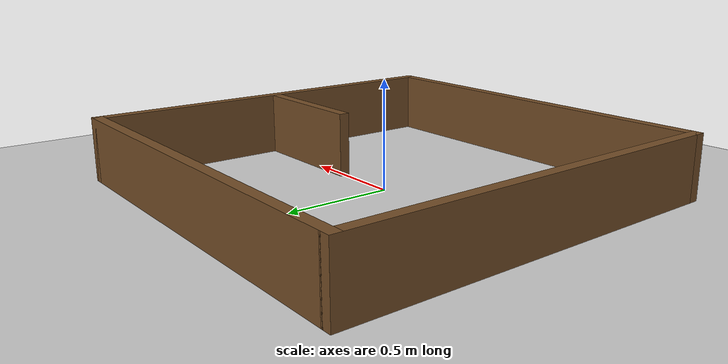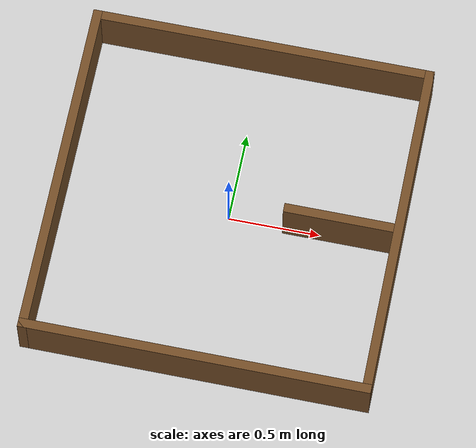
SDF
<?xml version="1.0" ?>
<sdf version="1.8">
  <world name="square2m_wall_ign">

    <physics name="default_physics" type="ode">
      <max_step_size>0.005</max_step_size>
      <real_time_factor>1.0</real_time_factor>
      <real_time_update_rate>200</real_time_update_rate>
    </physics>

    <!-- Core Ignition systems (Fortress / Gazebo6) -->
    <plugin filename="libignition-gazebo6-physics-system.so"
            name="ignition::gazebo::systems::Physics"/>

    <plugin filename="libignition-gazebo6-user-commands-system.so"
            name="ignition::gazebo::systems::UserCommands"/>

    <plugin filename="libignition-gazebo6-scene-broadcaster-system.so"
            name="ignition::gazebo::systems::SceneBroadcaster"/>

    <plugin filename="libignition-gazebo6-sensors-system.so"
            name="ignition::gazebo::systems::Sensors">
      <render_engine>ogre2</render_engine>
    </plugin>

    <!-- Scene configuration -->
    <scene>
      <ambient>0.6 0.6 0.6 1</ambient>
      <background>0.8 0.8 0.8 1</background>
      <shadows>false</shadows>
      <grid>true</grid>
    </scene>

    <!-- Sun light -->
    <light type="directional" name="sun">
      <cast_shadows>false</cast_shadows>
      <pose>0 0 10 0 0 0</pose>
      <diffuse>0.8 0.8 0.8 1</diffuse>
      <specular>0.2 0.2 0.2 1</specular>
      <direction>-0.5 0.1 -0.9</direction>
    </light>

    <!-- Ground plane -->
    <model name="ground_plane">
      <static>true</static>
      <link name="link">
        <collision name="collision">
          <geometry>
            <plane>
              <normal>0 0 1</normal>
              <size>20 20</size>
            </plane>
          </geometry>
        </collision>

        <visual name="visual">
          <geometry>
            <plane>
              <normal>0 0 1</normal>
              <size>20 20</size>
            </plane>
          </geometry>
          <material>
            <ambient>0.8 0.8 0.8 1</ambient>
            <diffuse>0.8 0.8 0.8 1</diffuse>
            <specular>0.1 0.1 0.1 1</specular>
          </material>
        </visual>
      </link>
    </model>

    <!-- GUI config -->
    <gui fullscreen="0">

      <!-- Main 3D view -->
      <plugin filename="MinimalScene" name="3D View">
        <gz-gui>
          <title>3D View</title>
          <property type="bool" key="showTitleBar">false</property>
          <property type="string" key="state">docked</property>
        </gz-gui>

        <engine>ogre2</engine>
        <scene>scene</scene>

        <!-- x y z roll pitch yaw -->
        <camera_pose>0 0 2.5 0 1.5708 0</camera_pose>
      </plugin>

      <!-- Internal scene updater: hidden as a tiny floating component -->
      <plugin filename="GzSceneManager" name="Scene Manager">
        <gz-gui>
          <property key="resizable" type="bool">false</property>
          <property key="width" type="double">1</property>
          <property key="height" type="double">1</property>
          <property key="state" type="string">floating</property>
          <property key="showTitleBar" type="bool">false</property>
        </gz-gui>
      </plugin>

      <!-- Mouse navigation: pan, orbit and zoom -->
      <plugin filename="InteractiveViewControl"
              name="Interactive view control">
        <gz-gui>
          <property key="resizable" type="bool">false</property>
          <property key="width" type="double">1</property>
          <property key="height" type="double">1</property>
          <property key="state" type="string">floating</property>
          <property key="showTitleBar" type="bool">false</property>
        </gz-gui>
      </plugin>

      <!-- Right-click actions such as Follow and View collisions -->
      <plugin filename="EntityContextMenuPlugin"
              name="Entity context menu">
        <gz-gui>
          <property key="resizable" type="bool">false</property>
          <property key="width" type="double">1</property>
          <property key="height" type="double">1</property>
          <property key="state" type="string">floating</property>
          <property key="showTitleBar" type="bool">false</property>
        </gz-gui>
      </plugin>

      <!-- Move To and Follow implementation -->
      <plugin filename="CameraTracking"
              name="Camera Tracking">
        <gz-gui>
          <property key="width" type="double">1</property>
          <property key="height" type="double">1</property>
          <property key="state" type="string">floating</property>
          <property key="showTitleBar" type="bool">false</property>
        </gz-gui>
      </plugin>

      <!-- Object properties -->
      <plugin filename="ComponentInspector"
              name="Component inspector"/>

      <!-- Entity hierarchy -->
      <plugin filename="EntityTree"
              name="Entity tree"/>

    </gui>

    <!-- Square 2 m boundary, centred at the world origin -->
    <include>
      <uri>model://square2m</uri>
      <name>square2m_boundary</name>
      <pose>0 0 0 0 0 0</pose>
    </include>

    <!-- 60 cm wall attached to the midpoint of the right-hand side.
         It extends perpendicularly from x=0.900 m to x=0.300 m,
         towards the inside of the enclosure. -->
    <include>
      <uri>model://wall60cm</uri>
      <name>wall60_inward</name>
      <pose>0.600 0 0.15 0 0 0</pose>
    </include>

  </world>
</sdf>

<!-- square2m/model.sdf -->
<sdf version='1.7'>
  <model name='square2m'>
    <pose>0 0 0 0 0 0</pose>
    <link name='Wall_0'>
      <collision name='Wall_0_Collision'>
        <geometry>
          <box>
            <size>1.9 0.05 0.3</size>
          </box>
        </geometry>
        <pose>0 0 0.15 0 -0 0</pose>
      </collision>
      <visual name='Wall_0_Visual'>
        <pose>0 0 0.15 0 -0 0</pose>
        <geometry>
          <box>
            <size>1.9 0.05 0.3</size>
          </box>
        </geometry>
        <material>
          <ambient>0.45 0.30 0.15 1</ambient>
          <diffuse>0.45 0.30 0.15 1</diffuse>
          <specular>0.05 0.05 0.05 1</specular>
        </material>
        <meta>
          <layer>0</layer>
        </meta>
      </visual>
      <pose>0 0.925 0 0 0 0</pose>
    </link>
    <link name='Wall_1'>
      <collision name='Wall_1_Collision'>
        <geometry>
          <box>
            <size>1.9 0.05 0.3</size>
          </box>
        </geometry>
        <pose>0 0 0.15 0 -0 0</pose>
      </collision>
      <visual name='Wall_1_Visual'>
        <pose>0 0 0.15 0 -0 0</pose>
        <geometry>
          <box>
            <size>1.9 0.05 0.3</size>
          </box>
        </geometry>
        <material>
          <ambient>0.45 0.30 0.15 1</ambient>
          <diffuse>0.45 0.30 0.15 1</diffuse>
          <specular>0.05 0.05 0.05 1</specular>
        </material>
        <meta>
          <layer>0</layer>
        </meta>
      </visual>
      <pose>0.925 0 0 0 0 -1.5708</pose>
    </link>
    <link name='Wall_2'>
      <collision name='Wall_2_Collision'>
        <geometry>
          <box>
            <size>1.9 0.05 0.3</size>
          </box>
        </geometry>
        <pose>0 0 0.15 0 -0 0</pose>
      </collision>
      <visual name='Wall_2_Visual'>
        <pose>0 0 0.15 0 -0 0</pose>
        <geometry>
          <box>
            <size>1.9 0.05 0.3</size>
          </box>
        </geometry>
        <material>
          <ambient>0.45 0.30 0.15 1</ambient>
          <diffuse>0.45 0.30 0.15 1</diffuse>
          <specular>0.05 0.05 0.05 1</specular>
        </material>
        <meta>
          <layer>0</layer>
        </meta>
      </visual>
      <pose>0 -0.925 0 0 0 3.14159</pose>
    </link>
    <link name='Wall_3'>
      <collision name='Wall_3_Collision'>
        <geometry>
          <box>
            <size>1.9 0.05 0.3</size>
          </box>
        </geometry>
        <pose>0 0 0.15 0 -0 0</pose>
      </collision>
      <visual name='Wall_3_Visual'>
        <pose>0 0 0.15 0 -0 0</pose>
        <geometry>
          <box>
            <size>1.9 0.05 0.3</size>
          </box>
        </geometry>
        <material>
          <ambient>0.45 0.30 0.15 1</ambient>
          <diffuse>0.45 0.30 0.15 1</diffuse>
          <specular>0.05 0.05 0.05 1</specular>
        </material>
        <meta>
          <layer>0</layer>
        </meta>
      </visual>
      <pose>-0.925 0 0 0 0 1.5708</pose>
    </link>
    <static>1</static>
  </model>
</sdf>

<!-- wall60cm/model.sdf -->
<sdf version="1.7">
  <model name="wall60cm">
    <static>true</static>
    <pose>0 0 0 0 0 0</pose>

    <link name="link">
      <collision name="collision">
        <geometry><box><size>0.6 0.05 0.3</size></box></geometry>
      </collision>

      <visual name="visual">
        <geometry><box><size>0.6 0.05 0.3</size></box></geometry>
        <material>
          <ambient>0.45 0.30 0.15 1</ambient>
          <diffuse>0.45 0.30 0.15 1</diffuse>
          <specular>0.05 0.05 0.05 1</specular>
        </material>
      </visual>
    </link>
  </model>
</sdf>
